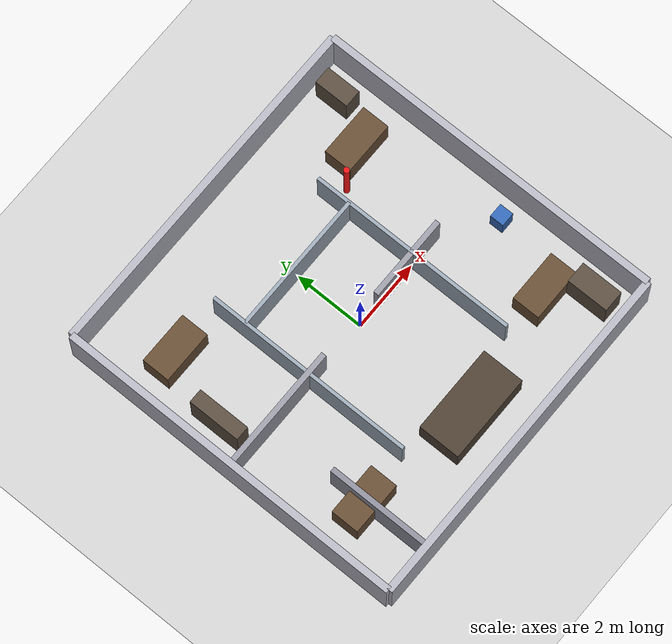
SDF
<?xml version='1.0' encoding='utf-8'?>
<sdf version="1.6">
  <world name="office">
    <gravity>0 0 -9.8</gravity>
    <physics default="0" name="default_physics" type="ode">
      <max_step_size>0.001</max_step_size>
      <real_time_factor>1</real_time_factor>
      <real_time_update_rate>1000</real_time_update_rate>
    </physics>

    <!-- Ground plane -->
    <model name="ground_plane">
      <static>true</static>
      <link name="link">
        <collision name="collision">
          <geometry>
            <plane>
              <normal>0 0 1</normal>
              <size>20 20</size>
            </plane>
          </geometry>
        </collision>
        <visual name="visual">
          <geometry>
            <plane>
              <normal>0 0 1</normal>
              <size>20 20</size>
            </plane>
          </geometry>
          <material>
            <ambient>0.8 0.8 0.8 1</ambient>
            <diffuse>0.8 0.8 0.8 1</diffuse>
            <specular>0.1 0.1 0.1 1</specular>
          </material>
        </visual>
      </link>
    </model>

    <!-- Office walls - Outer perimeter -->
    <model name="wall_north">
      <static>true</static>
      <pose>0 5 0.75 0 0 0</pose>
      <link name="link">
        <collision name="collision">
          <geometry>
            <box>
              <size>10 0.2 1.5</size>
            </box>
          </geometry>
        </collision>
        <visual name="visual">
          <geometry>
            <box>
              <size>10 0.2 1.5</size>
            </box>
          </geometry>
          <material>
            <ambient>0.7 0.7 0.75 1</ambient>
            <diffuse>0.7 0.7 0.75 1</diffuse>
          </material>
        </visual>
      </link>
    </model>

    <model name="wall_south">
      <static>true</static>
      <pose>0 -5 0.75 0 0 0</pose>
      <link name="link">
        <collision name="collision">
          <geometry>
            <box>
              <size>10 0.2 1.5</size>
            </box>
          </geometry>
        </collision>
        <visual name="visual">
          <geometry>
            <box>
              <size>10 0.2 1.5</size>
            </box>
          </geometry>
          <material>
            <ambient>0.7 0.7 0.75 1</ambient>
            <diffuse>0.7 0.7 0.75 1</diffuse>
          </material>
        </visual>
      </link>
    </model>

    <model name="wall_east">
      <static>true</static>
      <pose>5 0 0.75 0 0 0</pose>
      <link name="link">
        <collision name="collision">
          <geometry>
            <box>
              <size>0.2 10 1.5</size>
            </box>
          </geometry>
        </collision>
        <visual name="visual">
          <geometry>
            <box>
              <size>0.2 10 1.5</size>
            </box>
          </geometry>
          <material>
            <ambient>0.7 0.7 0.75 1</ambient>
            <diffuse>0.7 0.7 0.75 1</diffuse>
          </material>
        </visual>
      </link>
    </model>

    <model name="wall_west">
      <static>true</static>
      <pose>-5 0 0.75 0 0 0</pose>
      <link name="link">
        <collision name="collision">
          <geometry>
            <box>
              <size>0.2 10 1.5</size>
            </box>
          </geometry>
        </collision>
        <visual name="visual">
          <geometry>
            <box>
              <size>0.2 10 1.5</size>
            </box>
          </geometry>
          <material>
            <ambient>0.7 0.7 0.75 1</ambient>
            <diffuse>0.7 0.7 0.75 1</diffuse>
          </material>
        </visual>
      </link>
    </model>

    <!-- Interior walls - Cubicle dividers -->
    <model name="cubicle_wall_1">
      <static>true</static>
      <pose>-2 0 0.6 0 0 0</pose>
      <link name="link">
        <collision name="collision">
          <geometry>
            <box>
              <size>0.1 6 1.2</size>
            </box>
          </geometry>
        </collision>
        <visual name="visual">
          <geometry>
            <box>
              <size>0.1 6 1.2</size>
            </box>
          </geometry>
          <material>
            <ambient>0.6 0.65 0.7 1</ambient>
            <diffuse>0.6 0.65 0.7 1</diffuse>
          </material>
        </visual>
      </link>
    </model>

    <model name="cubicle_wall_2">
      <static>true</static>
      <pose>2 0 0.6 0 0 0</pose>
      <link name="link">
        <collision name="collision">
          <geometry>
            <box>
              <size>0.1 6 1.2</size>
            </box>
          </geometry>
        </collision>
        <visual name="visual">
          <geometry>
            <box>
              <size>0.1 6 1.2</size>
            </box>
          </geometry>
          <material>
            <ambient>0.6 0.65 0.7 1</ambient>
            <diffuse>0.6 0.65 0.7 1</diffuse>
          </material>
        </visual>
      </link>
    </model>

    <model name="cubicle_wall_3">
      <static>true</static>
      <pose>0 2 0.6 0 0 1.5708</pose>
      <link name="link">
        <collision name="collision">
          <geometry>
            <box>
              <size>0.1 4 1.2</size>
            </box>
          </geometry>
        </collision>
        <visual name="visual">
          <geometry>
            <box>
              <size>0.1 4 1.2</size>
            </box>
          </geometry>
          <material>
            <ambient>0.6 0.65 0.7 1</ambient>
            <diffuse>0.6 0.65 0.7 1</diffuse>
          </material>
        </visual>
      </link>
    </model>

    <!-- Office furniture - Desks -->
    <model name="desk_1">
      <static>true</static>
      <pose>-3.5 3 0.4 0 0 0</pose>
      <link name="link">
        <collision name="collision">
          <geometry>
            <box>
              <size>1.5 0.8 0.8</size>
            </box>
          </geometry>
        </collision>
        <visual name="visual">
          <geometry>
            <box>
              <size>1.5 0.8 0.8</size>
            </box>
          </geometry>
          <material>
            <ambient>0.4 0.3 0.2 1</ambient>
            <diffuse>0.4 0.3 0.2 1</diffuse>
          </material>
        </visual>
      </link>
    </model>

    <model name="desk_2">
      <static>true</static>
      <pose>-3.5 -3 0.4 0 0 0</pose>
      <link name="link">
        <collision name="collision">
          <geometry>
            <box>
              <size>1.5 0.8 0.8</size>
            </box>
          </geometry>
        </collision>
        <visual name="visual">
          <geometry>
            <box>
              <size>1.5 0.8 0.8</size>
            </box>
          </geometry>
          <material>
            <ambient>0.4 0.3 0.2 1</ambient>
            <diffuse>0.4 0.3 0.2 1</diffuse>
          </material>
        </visual>
      </link>
    </model>

    <model name="desk_3">
      <static>true</static>
      <pose>3.5 3 0.4 0 0 0</pose>
      <link name="link">
        <collision name="collision">
          <geometry>
            <box>
              <size>1.5 0.8 0.8</size>
            </box>
          </geometry>
        </collision>
        <visual name="visual">
          <geometry>
            <box>
              <size>1.5 0.8 0.8</size>
            </box>
          </geometry>
          <material>
            <ambient>0.4 0.3 0.2 1</ambient>
            <diffuse>0.4 0.3 0.2 1</diffuse>
          </material>
        </visual>
      </link>
    </model>

    <model name="desk_4">
      <static>true</static>
      <pose>3.5 -3 0.4 0 0 0</pose>
      <link name="link">
        <collision name="collision">
          <geometry>
            <box>
              <size>1.5 0.8 0.8</size>
            </box>
          </geometry>
        </collision>
        <visual name="visual">
          <geometry>
            <box>
              <size>1.5 0.8 0.8</size>
            </box>
          </geometry>
          <material>
            <ambient>0.4 0.3 0.2 1</ambient>
            <diffuse>0.4 0.3 0.2 1</diffuse>
          </material>
        </visual>
      </link>
    </model>

    <!-- Conference table -->
    <model name="conference_table">
      <static>true</static>
      <pose>0 -3.5 0.4 0 0 0</pose>
      <link name="link">
        <collision name="collision">
          <geometry>
            <box>
              <size>2.5 1.2 0.8</size>
            </box>
          </geometry>
        </collision>
        <visual name="visual">
          <geometry>
            <box>
              <size>2.5 1.2 0.8</size>
            </box>
          </geometry>
          <material>
            <ambient>0.3 0.25 0.2 1</ambient>
            <diffuse>0.3 0.25 0.2 1</diffuse>
          </material>
        </visual>
      </link>
    </model>

    <!-- Interior divider wall - splits office into two zones with 1.2m doorway -->
    <model name="divider_wall_left">
      <static>true</static>
      <pose>-3.2 0 0.6 0 0 0</pose>
      <link name="link">
        <collision name="collision">
          <geometry>
            <box>
              <size>3.6 0.15 1.2</size>
            </box>
          </geometry>
        </collision>
        <visual name="visual">
          <geometry>
            <box>
              <size>3.6 0.15 1.2</size>
            </box>
          </geometry>
          <material>
            <ambient>0.6 0.6 0.65 1</ambient>
            <diffuse>0.6 0.6 0.65 1</diffuse>
          </material>
        </visual>
      </link>
    </model>

    <model name="divider_wall_right">
      <static>true</static>
      <pose>1.8 0 0.6 0 0 0</pose>
      <link name="link">
        <collision name="collision">
          <geometry>
            <box>
              <size>2.4 0.15 1.2</size>
            </box>
          </geometry>
        </collision>
        <visual name="visual">
          <geometry>
            <box>
              <size>2.4 0.15 1.2</size>
            </box>
          </geometry>
          <material>
            <ambient>0.6 0.6 0.65 1</ambient>
            <diffuse>0.6 0.6 0.65 1</diffuse>
          </material>
        </visual>
      </link>
    </model>

    <!-- Storage room in bottom-left corner -->
    <model name="storage_wall_1">
      <static>true</static>
      <pose>-3.5 -3.5 0.6 0 0 0</pose>
      <link name="link">
        <collision name="collision">
          <geometry>
            <box>
              <size>0.15 3.0 1.2</size>
            </box>
          </geometry>
        </collision>
        <visual name="visual">
          <geometry>
            <box>
              <size>0.15 3.0 1.2</size>
            </box>
          </geometry>
          <material>
            <ambient>0.55 0.55 0.6 1</ambient>
            <diffuse>0.55 0.55 0.6 1</diffuse>
          </material>
        </visual>
      </link>
    </model>

    <model name="storage_wall_2">
      <static>true</static>
      <pose>-2.0 -5.0 0.6 0 0 0</pose>
      <link name="link">
        <collision name="collision">
          <geometry>
            <box>
              <size>3.0 0.15 1.2</size>
            </box>
          </geometry>
        </collision>
        <visual name="visual">
          <geometry>
            <box>
              <size>3.0 0.15 1.2</size>
            </box>
          </geometry>
          <material>
            <ambient>0.55 0.55 0.6 1</ambient>
            <diffuse>0.55 0.55 0.6 1</diffuse>
          </material>
        </visual>
      </link>
    </model>

    <!-- Filing cabinet -->
    <model name="cabinet_1">
      <static>true</static>
      <pose>4.2 4.2 0.5 0 0 0</pose>
      <link name="link">
        <collision name="collision">
          <geometry>
            <box>
              <size>0.5 1.0 1.0</size>
            </box>
          </geometry>
        </collision>
        <visual name="visual">
          <geometry>
            <box>
              <size>0.5 1.0 1.0</size>
            </box>
          </geometry>
          <material>
            <ambient>0.35 0.3 0.25 1</ambient>
            <diffuse>0.35 0.3 0.25 1</diffuse>
          </material>
        </visual>
      </link>
    </model>

    <!-- Bookshelf -->
    <model name="cabinet_2">
      <static>true</static>
      <pose>-4.2 1.0 0.6 0 0 0</pose>
      <link name="link">
        <collision name="collision">
          <geometry>
            <box>
              <size>0.4 1.5 1.2</size>
            </box>
          </geometry>
        </collision>
        <visual name="visual">
          <geometry>
            <box>
              <size>0.4 1.5 1.2</size>
            </box>
          </geometry>
          <material>
            <ambient>0.35 0.3 0.25 1</ambient>
            <diffuse>0.35 0.3 0.25 1</diffuse>
          </material>
        </visual>
      </link>
    </model>

    <!-- Supply shelf -->
    <model name="cabinet_3">
      <static>true</static>
      <pose>4.2 -4.0 0.5 0 0 0</pose>
      <link name="link">
        <collision name="collision">
          <geometry>
            <box>
              <size>0.6 1.2 1.0</size>
            </box>
          </geometry>
        </collision>
        <visual name="visual">
          <geometry>
            <box>
              <size>0.6 1.2 1.0</size>
            </box>
          </geometry>
          <material>
            <ambient>0.35 0.3 0.25 1</ambient>
            <diffuse>0.35 0.3 0.25 1</diffuse>
          </material>
        </visual>
      </link>
    </model>

    <!-- Water cooler -->
    <model name="water_cooler">
      <static>true</static>
      <pose>4.3 -1.0 0.3 0 0 0</pose>
      <link name="link">
        <collision name="collision">
          <geometry>
            <box>
              <size>0.4 0.4 0.6</size>
            </box>
          </geometry>
        </collision>
        <visual name="visual">
          <geometry>
            <box>
              <size>0.4 0.4 0.6</size>
            </box>
          </geometry>
          <material>
            <ambient>0.2 0.4 0.7 1</ambient>
            <diffuse>0.2 0.4 0.7 1</diffuse>
          </material>
        </visual>
      </link>
    </model>

    <!-- Hydrogen gas source marker -->
    <model name="h2_gas_source_marker">
      <static>true</static>
      <pose frame="">2.5 2.5 0.8 0 0 0</pose>
      <link name="marker_link">
        <visual name="marker_visual">
          <geometry>
            <cylinder>
              <radius>0.08</radius>
              <length>1.6</length>
            </cylinder>
          </geometry>
          <material>
            <ambient>0.95 0.08 0.08 1.0</ambient>
            <diffuse>0.95 0.08 0.08 1.0</diffuse>
            <specular>0.8 0.2 0.2 1.0</specular>
            <emissive>0.95 0.05 0.05 1.0</emissive>
          </material>
        </visual>
      </link>
    </model>

    <!-- Ceiling lights -->
    <light name="office_light_1" type="point">
      <pose frame="">-2.5 2.5 3 0 0 0</pose>
      <diffuse>0.6 0.6 0.6 1</diffuse>
      <specular>0.2 0.2 0.2 1</specular>
      <attenuation>
        <range>15</range>
        <constant>0.5</constant>
        <linear>0.02</linear>
        <quadratic>0.001</quadratic>
      </attenuation>
      <cast_shadows>1</cast_shadows>
    </light>

    <light name="office_light_2" type="point">
      <pose frame="">2.5 -2.5 3 0 0 0</pose>
      <diffuse>0.6 0.6 0.6 1</diffuse>
      <specular>0.2 0.2 0.2 1</specular>
      <attenuation>
        <range>15</range>
        <constant>0.5</constant>
        <linear>0.02</linear>
        <quadratic>0.001</quadratic>
      </attenuation>
      <cast_shadows>1</cast_shadows>
    </light>

    <light name="office_light_3" type="point">
      <pose frame="">0 0 3 0 0 0</pose>
      <diffuse>0.4 0.4 0.4 1</diffuse>
      <specular>0.1 0.1 0.1 1</specular>
      <attenuation>
        <range>10</range>
        <constant>0.5</constant>
        <linear>0.02</linear>
        <quadratic>0.001</quadratic>
      </attenuation>
      <cast_shadows>0</cast_shadows>
    </light>

  </world>
</sdf>
